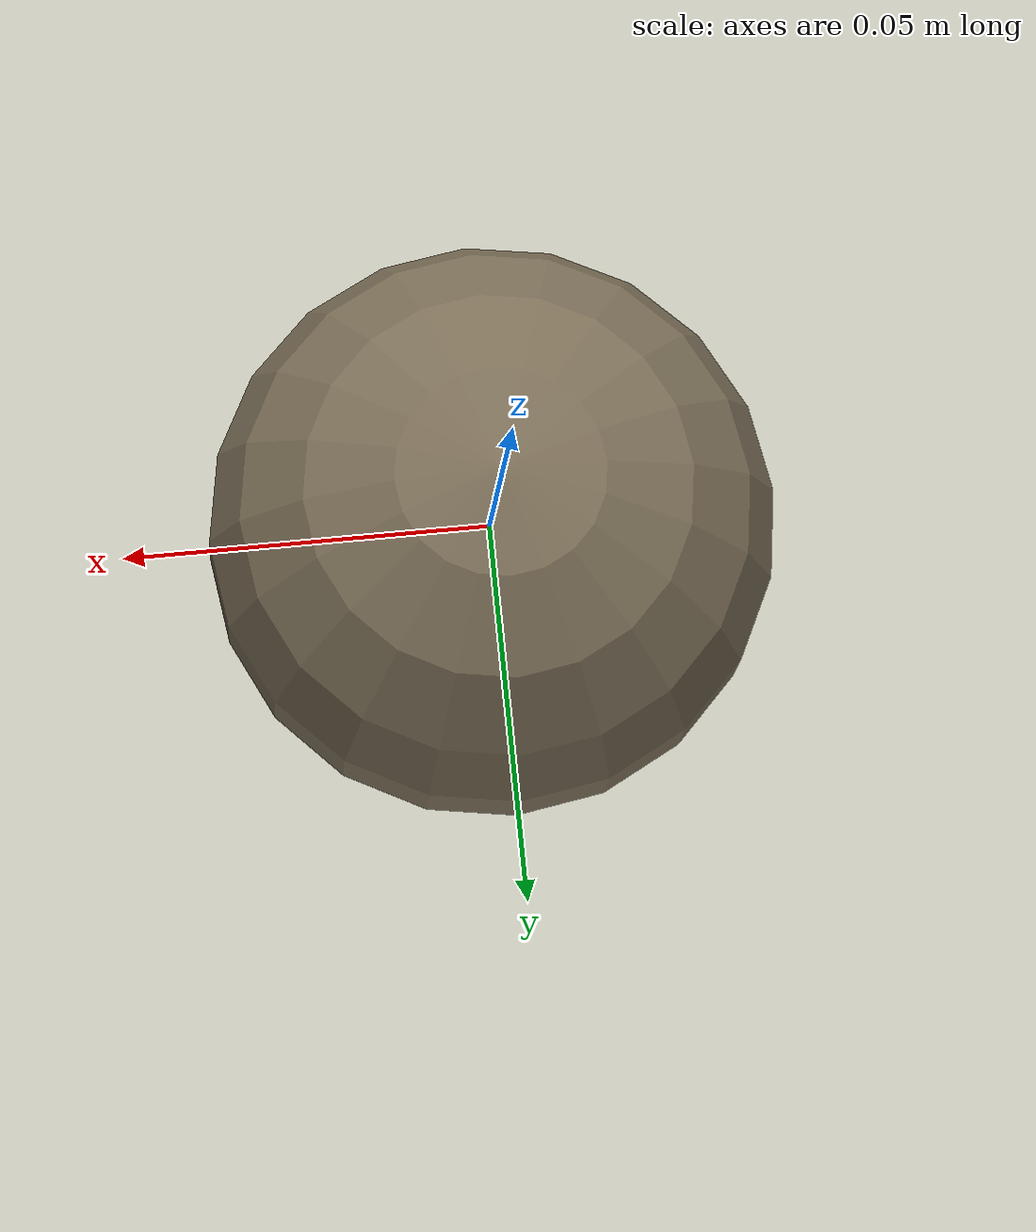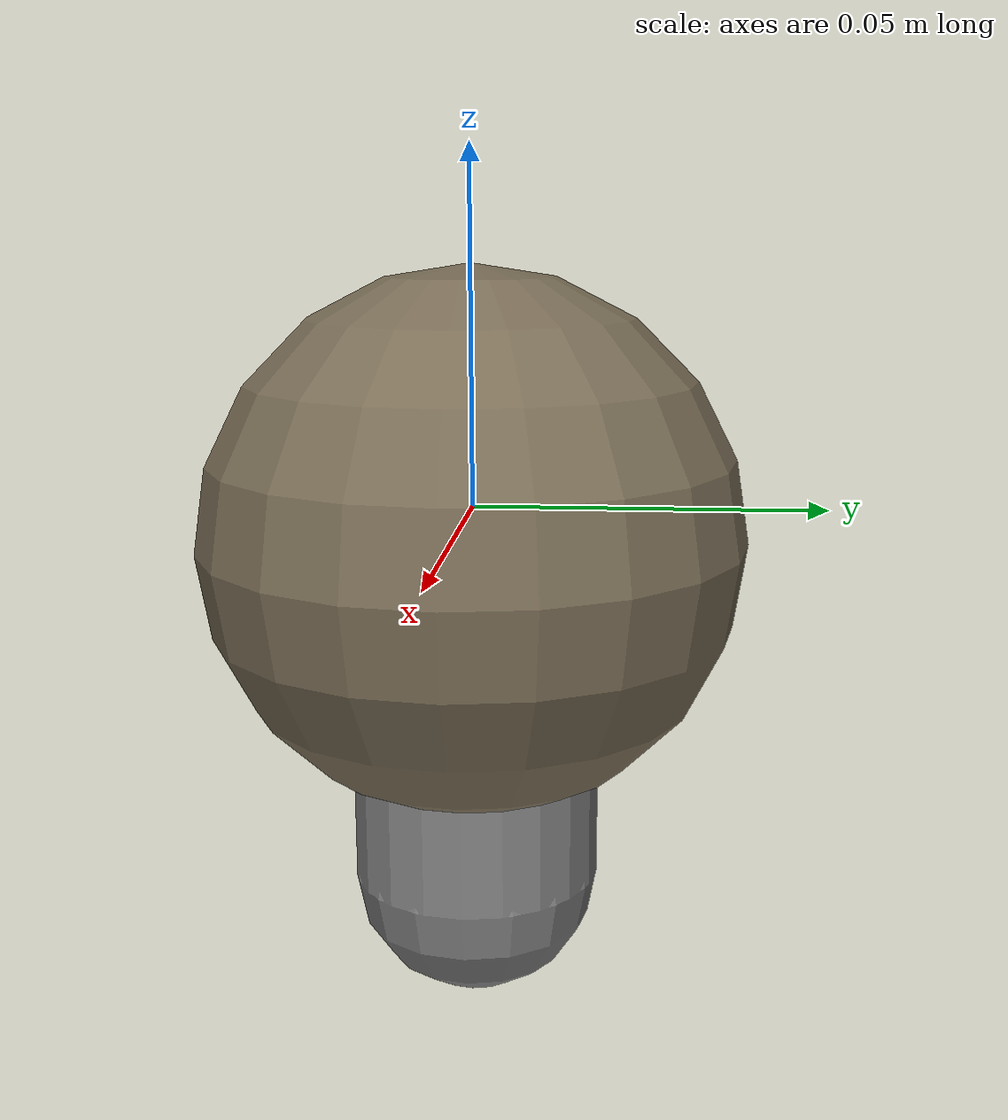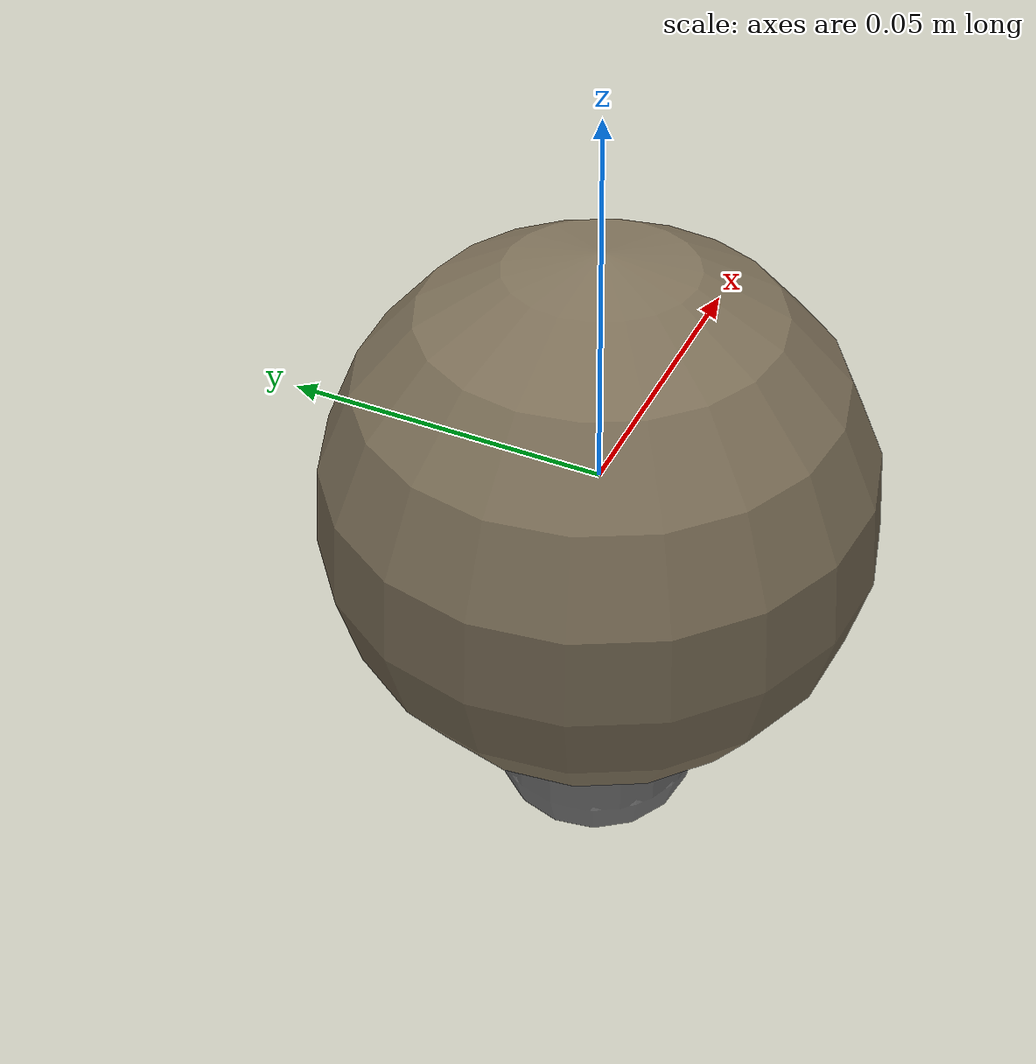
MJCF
<?xml version="1.0" encoding="UTF-8"?>
<!-- Clean-room source-only fallback for a wilted VLABench flower. -->
<mujoco model="libero_vlabench_wilted_flower_primitive">
  <worldbody>
    <body>
      <body name="object" euler="0 0.35 0">
        <geom name="wilt_stem_visual" type="capsule" group="1" contype="0" conaffinity="0"
              fromto="0 0 -0.055 0 0 -0.002" size="0.009" rgba="0.15 0.34 0.12 1"/>
        <geom name="wilt_petals_visual" type="sphere" group="1" contype="0" conaffinity="0"
              pos="0 0 -0.005" size="0.039" rgba="0.48 0.43 0.34 1"/>
        <geom name="wilt_collision" type="capsule" group="0"
              fromto="0 0 -0.055 0 0 0.005" size="0.018" mass="0.06"/>
      </body>
      <site name="bottom_site" pos="0 0 -0.055" size="0.005" rgba="0 0 0 0"/>
      <site name="top_site" pos="0 0 0.035" size="0.005" rgba="0 0 0 0"/>
      <site name="horizontal_radius_site" pos="0.040 0 0" size="0.005" rgba="0 0 0 0"/>
    </body>
  </worldbody>
</mujoco>
